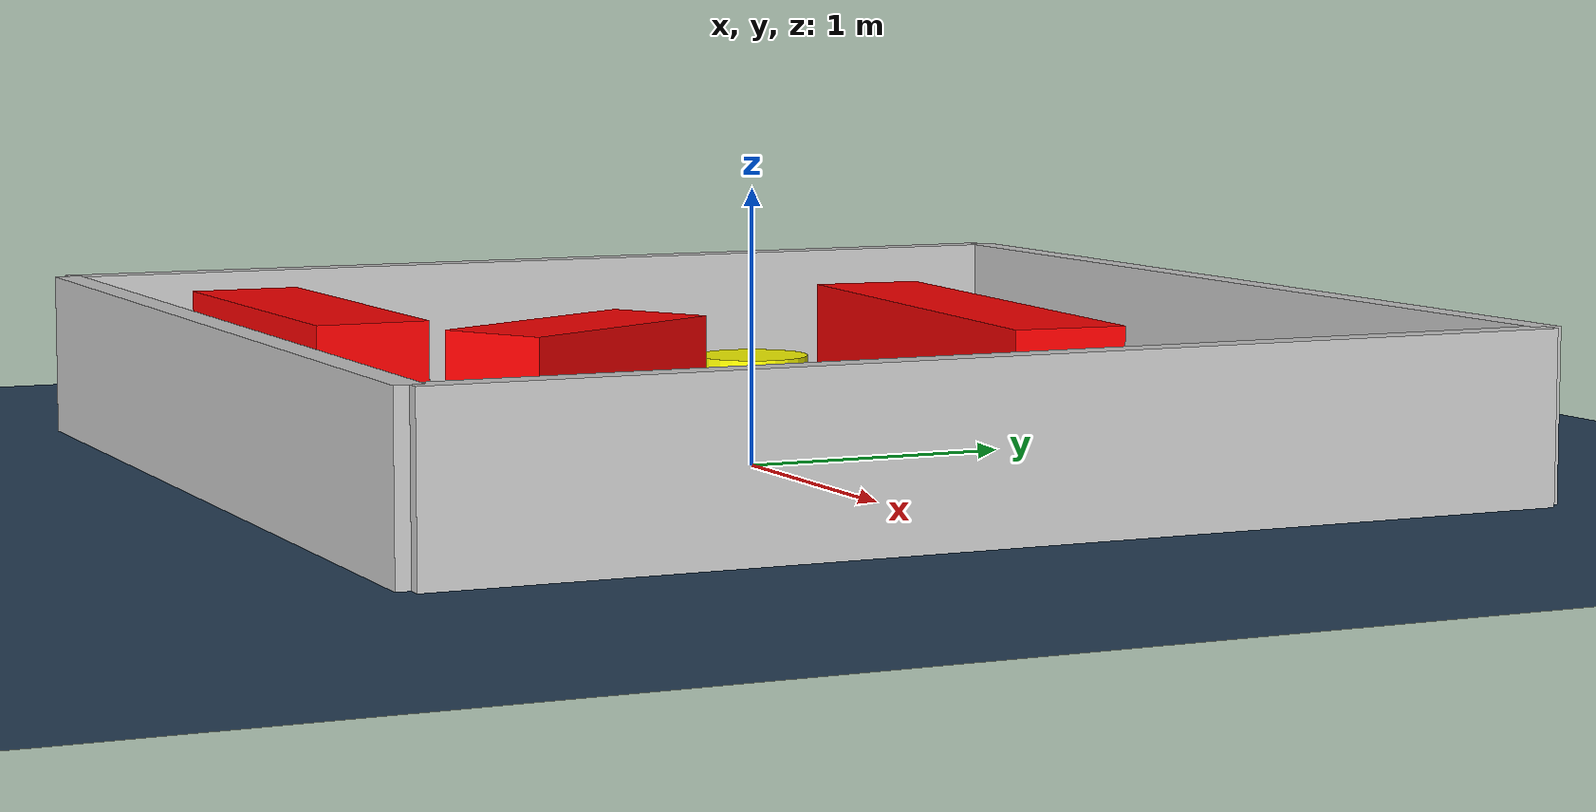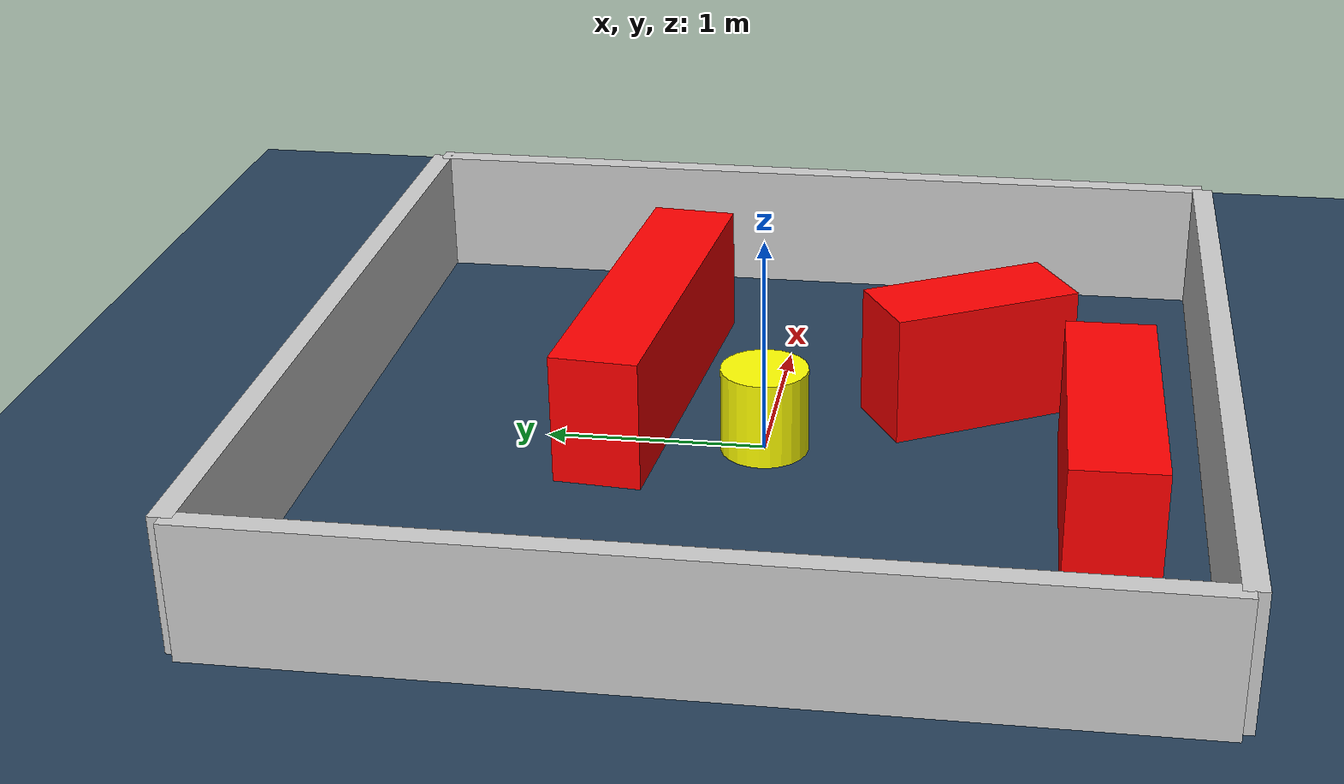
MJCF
<?xml version="1.0" ?>
<mujoco model="generated_environment">
  <option timestep="0.01" integrator="RK4" cone="elliptic"/>
  <default>
    <geom density="1"/>
  </default>
  <asset>
    <texture builtin="gradient" height="3072" rgb1="0.3 0.5 0.7" rgb2="0 0 0" type="skybox" width="512"/>
    <texture builtin="checker" height="300" mark="edge" markrgb="0.8 0.8 0.8" name="groundplane" rgb1="0.2 0.3 0.4" rgb2="0.1 0.2 0.3" type="2d" width="300"/>
    <material name="groundplane" reflectance="0.2" texrepeat="5 5" texture="groundplane" texuniform="true"/>
    <material name="robot" rgba="0.0 1.0 0.0 1"/>
  </asset>
  <worldbody>
    <light dir="0 0 -1" directional="true" pos="0 0 1.5"/>
    <geom condim="4" friction="1.0 0.005 0.001" material="groundplane" name="floor" size="0 0 0.05" type="plane"/>
    <body name="walls">
      <geom name="wall_1" condim="4" pos="-2.0 0.0 0.3" rgba="0.800000011920929 0.800000011920929 0.800000011920929 1.0" size="0.05 2.0 0.3" type="box"/>
      <geom name="wall_2" condim="4" pos="2.0 0.0 0.3" rgba="0.800000011920929 0.800000011920929 0.800000011920929 1.0" size="0.05 2.0 0.3" type="box"/>
      <geom name="wall_3" condim="4" pos="0.0 -2.0 0.3" rgba="0.800000011920929 0.800000011920929 0.800000011920929 1.0" size="2.0 0.05 0.3" type="box"/>
      <geom name="wall_4" condim="4" pos="0.0 2.0 0.3" rgba="0.800000011920929 0.800000011920929 0.800000011920929 1.0" size="2.0 0.05 0.3" type="box"/>
    </body>
    <body name="robot">
      <joint name="joint_x" type="slide" pos="0 0 0" axis="1 0 0"/>
      <joint name="joint_y" type="slide" pos="0 0 0" axis="0 1 0"/>
      <geom name="robot" type="sphere" pos="0.3 0.0 0.2" size="0.05" mass="5." friction="1.0 0.005 0.0001" condim="4" rgba="0.5 0.5 0.5 1.0"/>
      <site name="sensor_ball"/>
    </body>
    <body name="obstacle_movable_1">
      <geom name="obstacle_movable_1" condim="4" pos="0.0 0.0 0.2" euler="0 0 0.0" friction="1.0 0.005 0.001" rgba="1.0 1.0 0.0 1.0" size="0.2 0.2 0.0" type="cylinder" mass="0.1"/>
      <joint type="free"/>
    </body>
    <body name="obstacle_2_static">
      <geom name="obstacle_2_static" condim="4" pos="0.5208343373534612 -0.8846158336744072 0.3" euler="0 0 119.21631758928355" friction="1.0 0.005 0.001" rgba="1 0 0 1" size="0.4505700514952851 0.2 0.3" type="box"/>
    </body>
    <body name="obstacle_3_static">
      <geom name="obstacle_3_static" condim="4" pos="-0.4610848414396027 -1.528165863265394 0.3" euler="0 0 180.81617107968881" friction="1.0 0.005 0.001" rgba="1 0 0 1" size="0.7099329815915683 0.2 0.3" type="box"/>
    </body>
    <body name="obstacle_4_static">
      <geom name="obstacle_4_static" condim="4" pos="0.4569876829595436 0.6104640362006026 0.3" euler="0 0 175.3217763902906" friction="1.0 0.005 0.001" rgba="1 0 0 1" size="0.9133295922127838 0.2 0.3" type="box"/>
    </body>
  </worldbody>
  <actuator>
    <motor name="actuator_x" joint="joint_x" gear="1" ctrlrange="-1 1"/>
    <motor name="actuator_y" joint="joint_y" gear="1" ctrlrange="-1 1"/>
  </actuator>
</mujoco>
